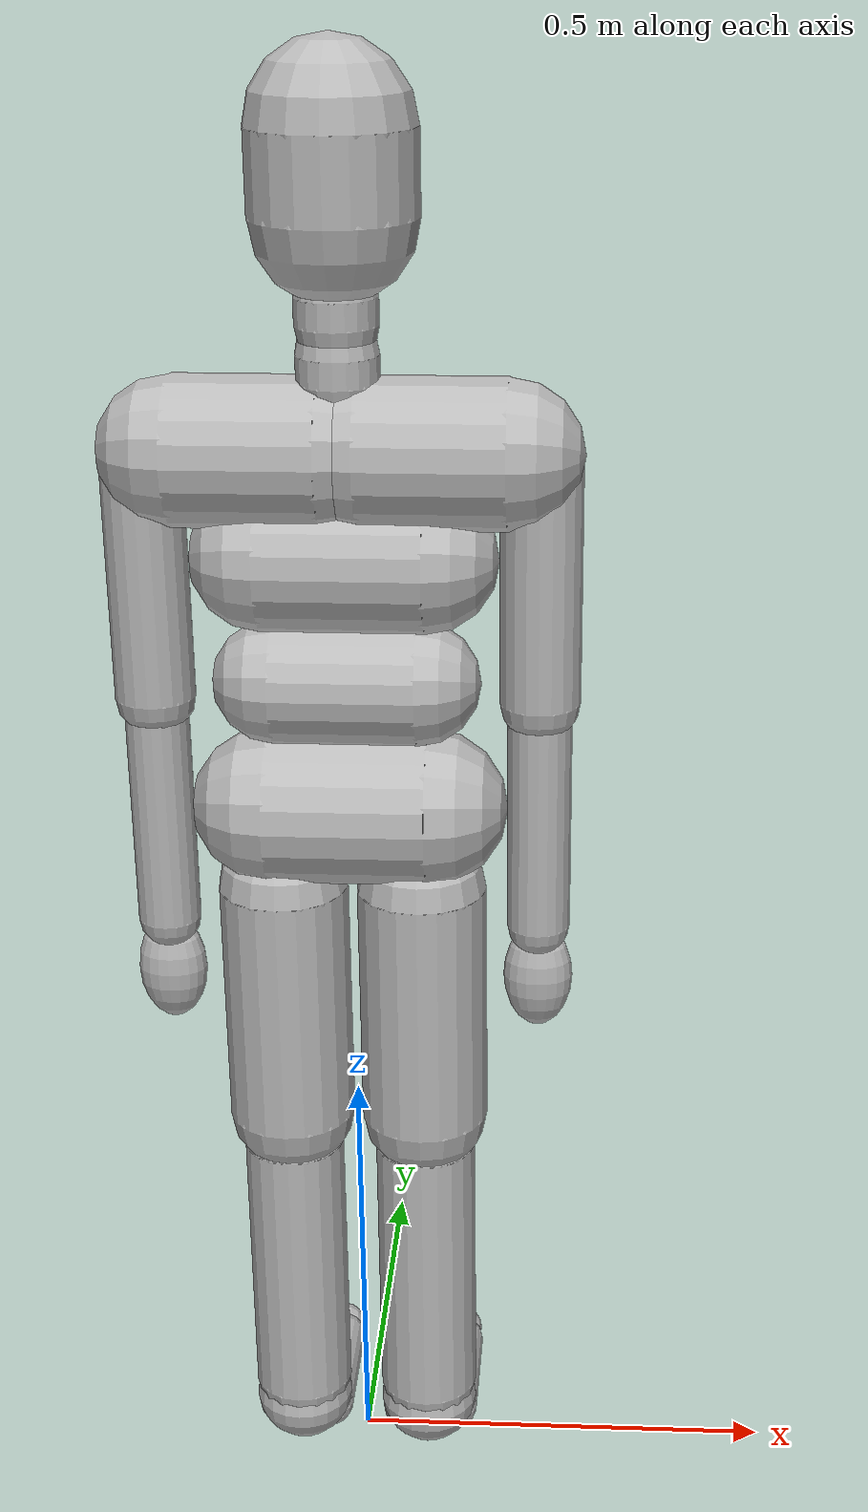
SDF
<?xml version='1.0' ?>
<!-- Humanoid model
Toyota Research Institute-->
<sdf version='1.6'>
  <model name='humanoid_v1'>
    <pose>0.0 0.0 0 0 0 0</pose>

    <link name='waist'>
      <pose>0 0 1.02 0 0 0</pose>
      <inertial>
        <mass>12</mass>
        <pose>0 0 0 0 0 0</pose>
      </inertial>
      <visual name="cap_waist">
        <pose>0 0 0 0 1.5708 0</pose>
        <geometry>
          <capsule>
            <radius>0.07</radius>
            <length>0.16</length>
          </capsule>
        </geometry>
        <material>
          <specular>1 1 0.1 1</specular>
        </material>
      </visual>
    </link>

    <link name='torso'>
      <pose relative_to='waist'>0 0 0.20 0 0 0</pose>
      <inertial>
        <mass>16</mass>
        <pose>0 0 0 0 0 0</pose>
      </inertial>
      <visual name="cap_upper_L">
        <pose>-0.1 0 0.06 0 1.5708 0</pose>
        <geometry>
          <capsule>
            <radius>0.082</radius>
            <length>0.16</length>
          </capsule>
        </geometry>
      </visual>
      <visual name="cap_upper_R">
        <pose>0.1 0 0.06 0 1.5708 0</pose>
        <geometry>
          <capsule>
            <radius>0.082</radius>
            <length>0.16</length>
          </capsule>
        </geometry>
      </visual>
      <visual name="cap_lower">
        <pose>0 0.005 -0.06 0 1.5708 0</pose>
        <geometry>
          <capsule>
            <radius>0.08</radius>
            <length>0.18</length>
          </capsule>
        </geometry>
        <material>
          <specular>1 1 0.1 1</specular>
        </material>
      </visual>
      <visual name="cap_lower_neck">
        <pose>0 0 0.15 0 0 0</pose>
        <geometry>
          <capsule>
            <radius>0.045</radius>
            <length>0.03</length>
          </capsule>
        </geometry>
      </visual>
    </link>

    <link name='head'>
      <pose relative_to='torso'>0 0 0.35 0 0 0</pose>
      <inertial>
        <mass>6.4</mass>
      </inertial>
      <visual name="cap_face">
        <pose>0 0 0 0 0 0</pose>
        <geometry>
          <capsule>
            <radius>0.09</radius>
            <length>0.09</length>
          </capsule>
        </geometry>
      </visual>
      <visual name="cap_upper_neck">
        <pose>0 0 -0.14 0 0 0</pose>
        <geometry>
          <capsule>
            <radius>0.045</radius>
            <length>0.03</length>
          </capsule>
        </geometry>
      </visual>
    </link>

    <link name='arm_L'>
      <pose relative_to='torso'>0.215 0 -0.08 0 0 0</pose>
      <inertial>
        <mass>2.4</mass>
      </inertial>
      <visual name="cyl_arm">
        <pose>0 0 0 0 0 0</pose>
        <geometry>
          <capsule>
            <radius>0.045</radius>
            <length>0.28</length>
          </capsule>
        </geometry>
      </visual>
    </link>

    <link name='forearm_L'>
      <pose relative_to='arm_L'>0 0 -0.29 0 0 0</pose>
      <inertial>
        <mass>1.4</mass>
      </inertial>
      <visual name="cyl_arm">
        <pose>0 0 0 0 0 0</pose>
        <geometry>
          <capsule>
            <radius>0.036</radius>
            <length>0.25</length>
          </capsule>
        </geometry>
      </visual>
    </link>

    <link name='hand_L'>
      <pose relative_to='forearm_L'>0 0 -0.19 0 0 0</pose>
      <inertial>
        <mass>0.5</mass>
      </inertial>
      <visual name="ellip_hand">
        <pose>0 0 0 0 0 0</pose>
        <geometry>
          <ellipsoid>
            <radii>0.04 0.03 0.065</radii>
          </ellipsoid>
        </geometry>
      </visual>
    </link>

    <link name='arm_R'>
      <pose relative_to='torso'>-0.215 0 -0.08 0 0 0</pose>
      <inertial>
        <mass>2.4</mass>
      </inertial>
      <visual name="cyl_arm">
        <pose>0 0 0 0 0 0</pose>
        <geometry>
          <capsule>
            <radius>0.045</radius>
            <length>0.28</length>
          </capsule>
        </geometry>
      </visual>
    </link>

    <link name='forearm_R'>
      <pose relative_to='arm_R'>0 0 -0.29 0 0 0</pose>
      <inertial>
        <mass>1.4</mass>
      </inertial>
      <visual name="cyl_arm">
        <pose>0 0 0 0 0 0</pose>
        <geometry>
          <capsule>
            <radius>0.036</radius>
            <length>0.25</length>
          </capsule>
        </geometry>
      </visual>
    </link>

    <link name='hand_R'>
      <pose relative_to='forearm_R'>0 0 -0.19 0 0 0</pose>
      <inertial>
        <mass>0.5</mass>
      </inertial>
      <visual name="ellip_hand">
        <pose>0 0 0 0 0 0</pose>
        <geometry>
          <ellipsoid>
            <radii>0.04 0.03 0.065</radii>
          </ellipsoid>
        </geometry>
      </visual>
    </link>

    <link name='hips'>
      <pose relative_to='waist'>0 0 -0.15 0 0 0</pose>
      <inertial>
        <mass>12</mass>
      </inertial>
      <visual name="cap_hips">
        <pose>0 0 0 0 1.5708 0</pose>
        <geometry>
          <capsule>
            <radius>0.09</radius>
            <length>0.18</length>
          </capsule>
        </geometry>
      </visual>
    </link>

    <link name='upper_leg_L'>
      <pose relative_to='hips'>0.08 0 -0.25 0 0 0</pose>
      <inertial>
        <mass>8</mass>
      </inertial>
      <visual name="cap_uleg">
        <pose>0 0 0 0 0 0</pose>
        <geometry>
          <capsule>
            <radius>0.075</radius>
            <length>0.30</length>
          </capsule>
        </geometry>
      </visual>
    </link>

    <link name='lower_leg_L'>
      <pose relative_to='upper_leg_L'>0 0.0 -0.37 0 0 0</pose>
      <inertial>
        <mass>4</mass>
      </inertial>
      <visual name="cyl_lleg">
        <pose>0 0 0 0 0 0</pose>
        <geometry>
          <capsule>
            <radius>0.06</radius>
            <length>0.35</length>
          </capsule>
        </geometry>
      </visual>
    </link>

    <link name='foot_L'>
      <pose relative_to='lower_leg_L'>0 0.08 -0.23 0 0 0</pose>
      <inertial>
        <mass>1</mass>
      </inertial>
      <visual name="sph_ankle">
        <pose>0 -0.08 0.028 0 0 0</pose>
        <geometry>
          <sphere>
            <radius>0.06</radius>
          </sphere>
        </geometry>
      </visual>
      <visual name="cap1_foot">
        <pose>-0.03 0.0 0 1.5708 0 0</pose>
        <geometry>
          <capsule>
            <radius>0.03</radius>
            <length>0.14</length>
          </capsule>
        </geometry>
      </visual>
      <visual name="cap2_foot">
        <pose>0.03 0.0 0 1.5708 0 0</pose>
        <geometry>
          <capsule>
            <radius>0.03</radius>
            <length>0.14</length>
          </capsule>
        </geometry>
      </visual>
    </link>

    <link name='toes_L'>
      <pose relative_to='foot_L'>0 0.1 -0.003 0 0 0</pose>
      <inertial>
        <mass>0.2</mass>
      </inertial>
      <visual name="cap_toes">
        <pose>0 0 0 0 1.5708 0</pose>
        <geometry>
          <capsule>
            <radius>0.027</radius>
            <length>0.06</length>
          </capsule>
        </geometry>
      </visual>
    </link>

    <link name='upper_leg_R'>
      <pose relative_to='hips'>-0.08 0 -0.25 0 0 0</pose>
      <inertial>
        <mass>8</mass>
      </inertial>
      <visual name="cap_uleg">
        <pose>0 0 0 0 0 0</pose>
        <geometry>
          <capsule>
            <radius>0.075</radius>
            <length>0.30</length>
          </capsule>
        </geometry>
      </visual>
    </link>

    <link name='lower_leg_R'>
      <pose relative_to='upper_leg_R'>0 0.0 -0.37 0 0 0</pose>
      <inertial>
        <mass>4</mass>
      </inertial>
      <visual name="cyl_lleg">
        <pose>0 0 0 0 0 0</pose>
        <geometry>
          <capsule>
            <radius>0.06</radius>
            <length>0.35</length>
          </capsule>
        </geometry>
      </visual>
    </link>

    <link name='foot_R'>
      <pose relative_to='lower_leg_R'>0 0.08 -0.23 0 0 0</pose>
      <inertial>
        <mass>1</mass>
      </inertial>
      <visual name="sph_ankle">
        <pose>0 -0.08 0.028 0 0 0</pose>
        <geometry>
          <sphere>
            <radius>0.06</radius>
          </sphere>
        </geometry>
      </visual>
      <visual name="cap1_foot">
        <pose>-0.03 0.0 0 1.5708 0 0</pose>
        <geometry>
          <capsule>
            <radius>0.03</radius>
            <length>0.14</length>
          </capsule>
        </geometry>
      </visual>
      <visual name="cap2_foot">
        <pose>0.03 0.0 0 1.5708 0 0</pose>
        <geometry>
          <capsule>
            <radius>0.03</radius>
            <length>0.14</length>
          </capsule>
        </geometry>
      </visual>
    </link>

    <link name='toes_R'>
      <pose relative_to='foot_R'>0 0.1 -0.003 0 0 0</pose>
      <inertial>
        <mass>0.2</mass>
      </inertial>
      <visual name="cap_toes">
        <pose>0 0 0 0 1.5708 0</pose>
        <geometry>
          <capsule>
            <radius>0.027</radius>
            <length>0.06</length>
          </capsule>
        </geometry>
      </visual>
    </link>

    <!-- universal joint for neck -->
    <link name='glue_torso_neck'>
      <pose relative_to='torso'>0 0.0 0.18 0 0 0</pose>
      <inertial>
        <mass>0</mass>
        <inertia>
          <ixx>0</ixx>
          <iyy>0</iyy>
          <izz>0</izz>
          <ixy>0</ixy>
          <ixz>0</ixz>
          <iyz>0</iyz>
        </inertia>
      </inertial>
    </link>

    <joint name='neck_joint1' type='revolute'>
      <parent>torso</parent>
      <child>glue_torso_neck</child>
      <pose>0 0 0 0 0 0</pose>
      <axis>
        <xyz>1.0 0.0 0.0</xyz>
        <limit>
          <lower>-1.2</lower>
          <upper>0.5</upper>
          <effort>10.0</effort>
        </limit>
      </axis>
    </joint>
    <joint name='neck_joint2' type='revolute'>
      <parent>glue_torso_neck</parent>
      <child>head</child>
      <pose>0 0 -0.17 0 0 0</pose>
      <axis>
        <xyz>0.0 1.0 0.0</xyz>
        <limit>
          <lower>-0.6</lower>
          <upper>0.6</upper>
          <effort>10.0</effort>
        </limit>
      </axis>
    </joint>

    <!-- universal joint for shoulder L-->
    <link name='glue_torso_armL'>
      <pose relative_to='torso'>0.215 0.0 0.07 0 0 0</pose>
      <inertial>
        <mass>0</mass>
        <inertia>
          <ixx>0</ixx>
          <iyy>0</iyy>
          <izz>0</izz>
          <ixy>0</ixy>
          <ixz>0</ixz>
          <iyz>0</iyz>
        </inertia>
      </inertial>
    </link>

    <joint name='shoulderL_joint1' type='revolute'>
      <parent>torso</parent>
      <child>glue_torso_armL</child>
      <pose>0 0 0 0 0 0 </pose>
      <axis>
        <xyz>1.0 0.0 0.0</xyz>
        <limit>
          <lower>-0.5</lower>
          <upper>3.1416</upper>
          <effort>10.0</effort>
        </limit>
      </axis>
    </joint>
    <joint name='shoulderL_joint2' type='revolute'>
      <parent>glue_torso_armL</parent>
      <child>arm_L</child>
      <pose>0 0 0.16 0 0 0 </pose>
      <axis>
        <xyz>0.0 1.0 0.0</xyz>
        <limit>
          <lower>-1.5708</lower>
          <upper>0.7853</upper>
          <effort>10.0</effort>
        </limit>
      </axis>
    </joint>

    <!-- revolute joint for elbow L-->
    <joint name='elbowL_joint' type='revolute'>
      <parent>arm_L</parent>
      <child>forearm_L</child>
      <pose>0 0 0.15 0 0 0 </pose>
      <axis>
        <xyz>1.0 0.0 0.0</xyz>
        <limit>
          <lower>-0.01</lower>
          <upper>2.3</upper>
          <effort>10.0</effort>
        </limit>
      </axis>
    </joint>

    <!-- revolute joint for wrist L -->
    <joint name='wristL_joint' type='revolute'>
      <parent>forearm_L</parent>
      <child>hand_L</child>
      <pose>0 0 0.05 0 0 0 </pose>
      <axis>
        <xyz>1.0 0.0 0.0</xyz>
        <limit>
          <lower>-1.5</lower>
          <upper>1.5</upper>
          <effort>10.0</effort>
        </limit>
      </axis>
    </joint>

   <!-- universal joint for shoulder R-->
    <link name='glue_torso_armR'>
      <pose relative_to='torso'>-0.215 0.0 0.07 0 0 0</pose>
      <inertial>
        <mass>0</mass>
        <inertia>
          <ixx>0</ixx>
          <iyy>0</iyy>
          <izz>0</izz>
          <ixy>0</ixy>
          <ixz>0</ixz>
          <iyz>0</iyz>
        </inertia>
      </inertial>
    </link>

    <joint name='shoulderR_joint1' type='revolute'>
      <parent>torso</parent>
      <child>glue_torso_armR</child>
      <pose>0 0 0 0 0 0 </pose>
      <axis>
        <xyz>1.0 0.0 0.0</xyz>
        <limit>
          <lower>-0.5</lower>
          <upper>3.1416</upper>
          <effort>10.0</effort>
        </limit>
      </axis>
    </joint>
    <joint name='shoulderR_joint2' type='revolute'>
      <parent>glue_torso_armR</parent>
      <child>arm_R</child>
      <pose>0 0 0.16 0 0 3.1416 </pose>
      <axis>
        <xyz>0.0 1.0 0.0</xyz>
        <limit>
          <lower>-1.5708</lower>
          <upper>0.7853</upper>
          <effort>10.0</effort>
        </limit>
      </axis>
    </joint>

    <!-- revolute joint for elbow R-->
    <joint name='elbowR_joint' type='revolute'>
      <parent>arm_R</parent>
      <child>forearm_R</child>
      <pose>0 0 0.15 0 0 0 </pose>
      <axis>
        <xyz>1.0 0.0 0.0</xyz>
        <limit>
          <lower>-0.01</lower>
          <upper>2.3</upper>
          <effort>10.0</effort>
        </limit>
      </axis>
    </joint>

    <!-- revolute joint for wrist R-->
    <joint name='wristR_joint' type='revolute'>
      <parent>forearm_R</parent>
      <child>hand_R</child>
      <pose>0 0 0.05 0 0 0 </pose>
      <axis>
        <xyz>1.0 0.0 0.0</xyz>
        <limit>
          <lower>-1.5</lower>
          <upper>1.5</upper>
          <effort>10.0</effort>
        </limit>
      </axis>
    </joint>

    <!-- weld for hips and waist link -->
    <joint name='waist_weld' type='fixed'>
      <parent>waist</parent>
      <child>hips</child>
      <pose>0 0 0 0 0 0</pose>
      <axis>
        <xyz>1.0 0.0 0.0</xyz>
      </axis>
    </joint>

    <!-- ball joint for torso and waist link -->
    <link name='glue_torso_waist1'>
      <pose relative_to='waist'>0 0.0 0.065 0 0 0</pose>
      <inertial>
        <mass>0</mass>
        <inertia>
          <ixx>0</ixx>
          <iyy>0</iyy>
          <izz>0</izz>
          <ixy>0</ixy>
          <ixz>0</ixz>
          <iyz>0</iyz>
        </inertia>
      </inertial>
    </link>

    <link name='glue_torso_waist2'>
      <pose relative_to='waist'>0 0.0 0.065 0 0 0</pose>
      <inertial>
        <mass>0</mass>
        <inertia>
          <ixx>0</ixx>
          <iyy>0</iyy>
          <izz>0</izz>
          <ixy>0</ixy>
          <ixz>0</ixz>
          <iyz>0</iyz>
        </inertia>
      </inertial>
    </link>

    <joint name='torso_joint1' type='revolute'>
      <parent>waist</parent>
      <child>glue_torso_waist1</child>
      <pose>0 0 0 0 0 0</pose>
      <axis>
        <xyz>1.0 0.0 0.0</xyz>
        <limit>
          <lower>-0.2</lower>
          <upper>0.05</upper>
          <effort>10.0</effort>
        </limit>
      </axis>
    </joint>
    <joint name='torso_joint2' type='revolute'>
      <parent>glue_torso_waist1</parent>
      <child>glue_torso_waist2</child>
      <pose>0 0 0 0 0 0</pose>
      <axis>
        <xyz>0.0 1.0 0.0</xyz>
        <limit>
          <lower>-0.13</lower>
          <upper>0.13</upper>
          <effort>10.0</effort>
        </limit>
      </axis>
    </joint>
    <joint name='torso_joint3' type='revolute'>
      <parent>glue_torso_waist2</parent>
      <child>torso</child>
      <pose>0 0 0 0 0 0</pose>
      <axis>
        <xyz>0.0 0.0 1.0</xyz>
        <limit>
          <lower>-0.3</lower>
          <upper>0.3</upper>
          <effort>10.0</effort>
        </limit>
      </axis>
    </joint>

    <!-- universal joint for hip L-->
    <link name='glue_hips_upper_leg_L'>
      <pose relative_to='hips'>0.08 0.0 -0.07 0 0 0</pose>
      <inertial>
        <mass>0</mass>
        <inertia>
          <ixx>0</ixx>
          <iyy>0</iyy>
          <izz>0</izz>
          <ixy>0</ixy>
          <ixz>0</ixz>
          <iyz>0</iyz>
        </inertia>
      </inertial>
    </link>

    <joint name='hipL_joint1' type='revolute'>
      <parent>glue_hips_upper_leg_L</parent>
      <child>upper_leg_L</child>
      <pose>0 0 0.18 0 0 3.1416 </pose>
      <axis>
        <xyz>1.0 0.0 0.0</xyz>
        <limit>
          <lower>-1.55</lower>
          <upper>0.08</upper>
          <effort>10.0</effort>
        </limit>
      </axis>
    </joint>
    <joint name='hipL_joint2' type='revolute'>
      <parent>hips</parent>
      <child>glue_hips_upper_leg_L</child>
      <pose>0.0 0 0 0 0 0 </pose>
      <axis>
        <xyz>0.0 1.0 0</xyz>
        <limit>
          <lower>-0.15</lower>
          <upper>0.5</upper>
          <effort>10.0</effort>
        </limit>
      </axis>
    </joint>

    <!-- revolute joint for knee L -->
    <joint name='kneeL_joint' type='revolute'>
      <parent>upper_leg_L</parent>
      <child>lower_leg_L</child>
      <pose>0 0 0.21 0 0 3.1416 </pose>
      <axis>
        <xyz>1.0 0.0 0.0</xyz>
        <limit>
          <lower>-0.1</lower>
          <upper>1.74</upper>
          <effort>10.0</effort>
        </limit>
      </axis>
    </joint>

    <!-- universal joint for ankle -->
    <link name='glue_foot_lower_leg_L'>
      <pose relative_to='lower_leg_L'>0 0.0 -0.22 0 0 0</pose>
      <inertial>
        <mass>0</mass>
        <inertia>
          <ixx>0</ixx>
          <iyy>0</iyy>
          <izz>0</izz>
          <ixy>0</ixy>
          <ixz>0</ixz>
          <iyz>0</iyz>
        </inertia>
      </inertial>
    </link>

    <joint name='ankleL_joint1' type='revolute'>
      <parent>glue_foot_lower_leg_L</parent>
      <child>foot_L</child>
      <pose>0 -0.1 0 0 0 3.1416</pose>
      <axis>
        <xyz>1.0 0.0 0.0</xyz>
        <limit>
          <lower>-0.2</lower>
          <upper>0.3</upper>
          <effort>10.0</effort>
        </limit>
      </axis>
    </joint>

    <joint name='ankleL_joint2' type='revolute'>
      <parent>lower_leg_L</parent>
      <child>glue_foot_lower_leg_L</child>
      <pose>0 0 0 0 0 0</pose>
      <axis>
        <xyz>0.0 0.0 1.0</xyz>
        <limit>
          <lower>-0.3</lower>
          <upper>0.7</upper>
          <effort>10.0</effort>
        </limit>
      </axis>
    </joint>

    <!-- revolute joint for toes L -->
    <joint name='toesL_joint' type='revolute'>
      <parent>foot_L</parent>
      <child>toes_L</child>
      <pose>0 -0.02 0 0 0 3.1416 </pose>
      <axis>
        <xyz>1.0 0.0 0.0</xyz>
        <limit>
          <lower>-0.15</lower>
          <upper>0</upper>
          <effort>10.0</effort>
        </limit>
      </axis>
    </joint>

    <!-- universal joint for hip R-->
    <link name='glue_hips_upper_leg_R'>
      <pose relative_to='hips'>-0.08 0.0 -0.07 0 0 0</pose>
      <inertial>
        <mass>0</mass>
        <inertia>
          <ixx>0</ixx>
          <iyy>0</iyy>
          <izz>0</izz>
          <ixy>0</ixy>
          <ixz>0</ixz>
          <iyz>0</iyz>
        </inertia>
      </inertial>
    </link>

    <joint name='hipR_joint1' type='revolute'>
      <parent>glue_hips_upper_leg_R</parent>
      <child>upper_leg_R</child>
      <pose>0 0 0.18 0 0 3.1416 </pose>
      <axis>
        <xyz>1.0 0.0 0.0</xyz>
        <limit>
          <lower>-1.55</lower>
          <upper>0.08</upper>
          <effort>10.0</effort>
        </limit>
      </axis>
    </joint>
    <joint name='hipR_joint2' type='revolute'>
      <parent>hips</parent>
      <child>glue_hips_upper_leg_R</child>
      <pose>0.0 0 0 0 0 0 </pose>
      <axis>
        <xyz>0.0 1.0 0</xyz>
        <limit>
          <lower>-0.15</lower>
          <upper>0.5</upper>
          <effort>10.0</effort>
        </limit>
      </axis>
    </joint>

    <!-- revolute joint for knee R -->
    <joint name='kneeR_joint' type='revolute'>
      <parent>upper_leg_R</parent>
      <child>lower_leg_R</child>
      <pose>0 0 0.21 0 0 3.1416 </pose>
      <axis>
        <xyz>1.0 0.0 0.0</xyz>
        <limit>
          <lower>-0.1</lower>
          <upper>1.74</upper>
          <effort>10.0</effort>
        </limit>
      </axis>
    </joint>

    <!-- universal joint for ankle -->
    <link name='glue_foot_lower_leg_R'>
      <pose relative_to='lower_leg_R'>0 0.0 -0.22 0 0 0</pose>
      <inertial>
        <mass>0</mass>
        <inertia>
          <ixx>0</ixx>
          <iyy>0</iyy>
          <izz>0</izz>
          <ixy>0</ixy>
          <ixz>0</ixz>
          <iyz>0</iyz>
        </inertia>
      </inertial>
    </link>

    <joint name='ankleR_joint1' type='revolute'>
      <parent>glue_foot_lower_leg_R</parent>
      <child>foot_R</child>
      <pose>0 -0.1 0 0 0 3.1416</pose>
      <axis>
        <xyz>1.0 0.0 0.0</xyz>
        <limit>
          <lower>-0.2</lower>
          <upper>0.3</upper>
          <effort>10.0</effort>
        </limit>
      </axis>
    </joint>

    <joint name='ankleR_joint2' type='revolute'>
      <parent>lower_leg_R</parent>
      <child>glue_foot_lower_leg_R</child>
      <pose>0 0 0 0 0 0</pose>
      <axis>
        <xyz>0.0 0.0 1.0</xyz>
        <limit>
          <lower>-0.3</lower>
          <upper>0.7</upper>
          <effort>10.0</effort>
        </limit>
      </axis>
    </joint>

    <!-- revolute joint for toes R -->
    <joint name='toesR_joint' type='revolute'>
      <parent>foot_R</parent>
      <child>toes_R</child>
      <pose>0 -0.02 0 0 0 3.1416</pose>
      <axis>
        <xyz>1.0 0.0 0.0</xyz>
        <limit>
          <lower>-0.15</lower>
          <upper>0</upper>
          <effort>10.0</effort>
        </limit>
      </axis>
    </joint>

  </model>
</sdf>
